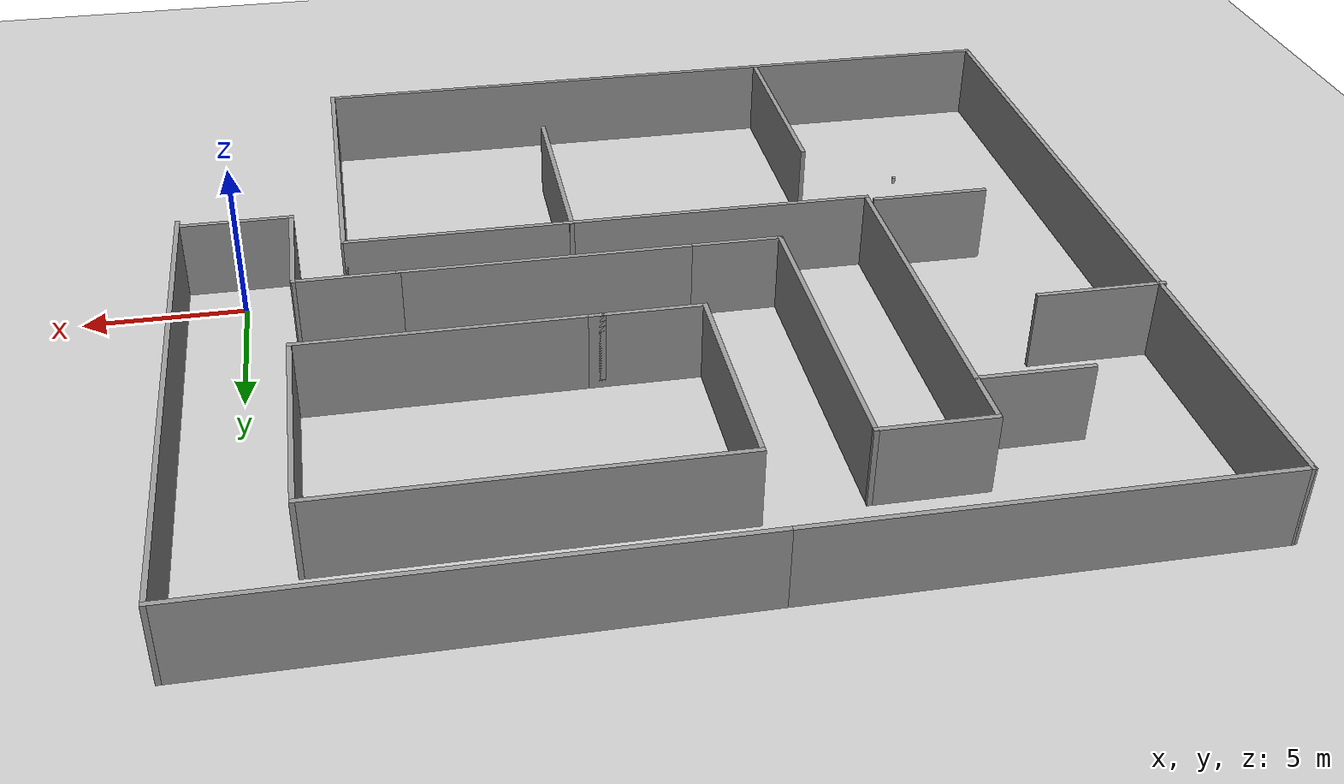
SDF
<sdf version="1.7">
 <world name="default">
  <light name="sun" type="directional">
   <pose>0 0 10 0 -0 0</pose>
   <diffuse>0.8 0.8 0.8 1</diffuse>
   <specular>0.2 0.2 0.2 1</specular>
   <attenuation>
    <range>1000</range>
    <constant>0.9</constant>
    <linear>0.01</linear>
    <quadratic>0.001</quadratic>
   </attenuation>
   <direction>-0.5 0.1 -0.9</direction>
   <spot><inner_angle>0</inner_angle><outer_angle>0</outer_angle><falloff>0</falloff></spot>
  </light>
  <model name="ground_plane">
   <static>1</static>
   <link name="link">
    <collision name="collision">
     <geometry><plane><normal>0 0 1</normal><size>100 100</size></plane></geometry>
     <surface>
      <contact><collide_bitmask>65535</collide_bitmask></contact>
      <friction><ode><mu>100</mu><mu2>50</mu2></ode></friction>
     </surface>
    </collision>
    <visual name="visual">
     <cast_shadows>0</cast_shadows>
     <geometry><plane><normal>0 0 1</normal><size>100 100</size></plane></geometry>
     <material>
      <script><uri>file://media/materials/scripts/gazebo.material</uri><name>Gazebo/Grey</name></script>
     </material>
    </visual>
   </link>
  </model>
  <gravity>0 0 -9.8</gravity>
  <magnetic_field>6e-06 2.3e-05 -4.2e-05</magnetic_field>
  <atmosphere type="adiabatic"/>
  <physics type="ode">
   <max_step_size>0.001</max_step_size>
   <real_time_factor>1</real_time_factor>
   <real_time_update_rate>1000</real_time_update_rate>
  </physics>
  <scene><ambient>0.4 0.4 0.4 1</ambient><background>0.7 0.7 0.7 1</background><shadows>1</shadows></scene>
  <audio><device>default</device></audio>
  <spherical_coordinates>
   <surface_model>EARTH_WGS84</surface_model>
   <latitude_deg>0</latitude_deg>
   <longitude_deg>0</longitude_deg>
   <elevation>0</elevation>
   <heading_deg>0</heading_deg>
  </spherical_coordinates>
  <model name="vudi">
   <pose>-9.96794 3.08644 0 0 -0 0</pose>
   <link name="Wall_0">
    <collision name="Wall_0_Collision">
     <geometry><box><size>17.5 0.15 2.5</size></box></geometry>
     <pose>0 0 1.25 0 -0 0</pose>
    </collision>
    <visual name="Wall_0_Visual">
     <pose>0 0 1.25 0 -0 0</pose>
     <geometry><box><size>17.5 0.15 2.5</size></box></geometry>
     <material>
      <script><uri>file://media/materials/scripts/gazebo.material</uri><name>Gazebo/Grey</name></script>
      <ambient>1 1 1 1</ambient>
     </material>
     <meta><layer>0</layer></meta>
    </visual>
    <pose>11.8385 4 0 0 -0 1.5708</pose>
   </link>
   <link name="Wall_1">
    <collision name="Wall_1_Collision">
     <geometry><box><size>15.25 0.15 2.5</size></box></geometry>
     <pose>0 0 1.25 0 -0 0</pose>
    </collision>
    <visual name="Wall_1_Visual">
     <pose>0 0 1.25 0 -0 0</pose>
     <geometry><box><size>15.25 0.15 2.5</size></box></geometry>
     <material>
      <script><uri>file://media/materials/scripts/gazebo.material</uri><name>Gazebo/Grey</name></script>
      <ambient>1 1 1 1</ambient>
     </material>
     <meta><layer>0</layer></meta>
    </visual>
    <pose>4.28854 12.675 0 0 -0 3.14159</pose>
   </link>
   <link name="Wall_10">
    <collision name="Wall_10_Collision">
     <geometry><box><size>7 0.15 2.5</size></box></geometry>
     <pose>0 0 1.25 0 -0 0</pose>
    </collision>
    <visual name="Wall_10_Visual">
     <pose>0 0 1.25 0 -0 0</pose>
     <geometry><box><size>7 0.15 2.5</size></box></geometry>
     <material>
      <script><uri>file://media/materials/scripts/gazebo.material</uri><name>Gazebo/Grey</name></script>
      <ambient>1 1 1 1</ambient>
     </material>
     <meta><layer>0</layer></meta>
    </visual>
    <pose>-3.37343 6.15995 0 0 -0 -1.5708</pose>
   </link>
   <link name="Wall_11">
    <collision name="Wall_11_Collision">
     <geometry><box><size>3.5 0.15 2.5</size></box></geometry>
     <pose>0 0 1.25 0 -0 0</pose>
    </collision>
    <visual name="Wall_11_Visual">
     <pose>0 0 1.25 0 -0 0</pose>
     <geometry><box><size>3.5 0.15 2.5</size></box></geometry>
     <material>
      <script><uri>file://media/materials/scripts/gazebo.material</uri><name>Gazebo/Grey</name></script>
      <ambient>1 1 1 1</ambient>
     </material>
     <meta><layer>0</layer></meta>
    </visual>
    <pose>-1.69843 2.73495 0 0 -0 0</pose>
   </link>
   <link name="Wall_13">
    <collision name="Wall_13_Collision">
     <geometry><box><size>3.25 0.15 2.5</size></box></geometry>
     <pose>0 0 1.25 0 -0 0</pose>
    </collision>
    <visual name="Wall_13_Visual">
     <pose>0 0 1.25 0 -0 0</pose>
     <geometry><box><size>3.25 0.15 2.5</size></box></geometry>
     <material>
      <script><uri>file://media/materials/scripts/gazebo.material</uri><name>Gazebo/Grey</name></script>
      <ambient>1 1 1 1</ambient>
     </material>
     <meta><layer>0</layer></meta>
    </visual>
    <pose>6.78854 -0.575 0 0 -0 0</pose>
   </link>
   <link name="Wall_14">
    <collision name="Wall_14_Collision">
     <geometry><box><size>4 0.15 2.5</size></box></geometry>
     <pose>0 0 1.25 0 -0 0</pose>
    </collision>
    <visual name="Wall_14_Visual">
     <pose>0 0 1.25 0 -0 0</pose>
     <geometry><box><size>4 0.15 2.5</size></box></geometry>
     <material>
      <script><uri>file://media/materials/scripts/gazebo.material</uri><name>Gazebo/Grey</name></script>
      <ambient>1 1 1 1</ambient>
     </material>
     <meta><layer>0</layer></meta>
    </visual>
    <pose>8.33854 -2.5 0 0 -0 -1.5708</pose>
   </link>
   <link name="Wall_17">
    <collision name="Wall_17_Collision">
     <geometry><box><size>3.5 0.15 2.5</size></box></geometry>
     <pose>0 0 1.25 0 -0 0</pose>
    </collision>
    <visual name="Wall_17_Visual">
     <pose>0 0 1.25 0 -0 0</pose>
     <geometry><box><size>3.5 0.15 2.5</size></box></geometry>
     <material>
      <script><uri>file://media/materials/scripts/gazebo.material</uri><name>Gazebo/Grey</name></script>
      <ambient>1 1 1 1</ambient>
     </material>
     <meta><layer>0</layer></meta>
    </visual>
    <pose>10.0135 -4.425 0 0 -0 0</pose>
   </link>
   <link name="Wall_19">
    <collision name="Wall_19_Collision">
     <geometry><box><size>3 0.15 2.5</size></box></geometry>
     <pose>0 0 1.25 0 -0 0</pose>
    </collision>
    <visual name="Wall_19_Visual">
     <pose>0 0 1.25 0 -0 0</pose>
     <geometry><box><size>3 0.15 2.5</size></box></geometry>
     <material>
      <script><uri>file://media/materials/scripts/gazebo.material</uri><name>Gazebo/Grey</name></script>
      <ambient>1 1 1 1</ambient>
     </material>
     <meta><layer>0</layer></meta>
    </visual>
    <pose>-5.03646 -0.575 0 0 -0 3.14159</pose>
   </link>
   <link name="Wall_20">
    <collision name="Wall_20_Collision">
     <geometry><box><size>10 0.15 2.5</size></box></geometry>
     <pose>0 0 1.25 0 -0 0</pose>
    </collision>
    <visual name="Wall_20_Visual">
     <pose>0 0 1.25 0 -0 0</pose>
     <geometry><box><size>10 0.15 2.5</size></box></geometry>
     <material>
      <script><uri>file://media/materials/scripts/gazebo.material</uri><name>Gazebo/Grey</name></script>
      <ambient>1 1 1 1</ambient>
     </material>
     <meta><layer>0</layer></meta>
    </visual>
    <pose>-6.46146 4.35 0 0 -0 1.5708</pose>
   </link>
   <link name="Wall_21">
    <collision name="Wall_21_Collision">
     <geometry><box><size>3.5 0.15 2.5</size></box></geometry>
     <pose>0 0 1.25 0 -0 0</pose>
    </collision>
    <visual name="Wall_21_Visual">
     <pose>0 0 1.25 0 -0 0</pose>
     <geometry><box><size>3.5 0.15 2.5</size></box></geometry>
     <material>
      <script><uri>file://media/materials/scripts/gazebo.material</uri><name>Gazebo/Grey</name></script>
      <ambient>1 1 1 1</ambient>
     </material>
     <meta><layer>0</layer></meta>
    </visual>
    <pose>-8.13646 9.275 0 0 -0 3.14159</pose>
   </link>
   <link name="Wall_22">
    <collision name="Wall_22_Collision">
     <geometry><box><size>12 0.15 2.5</size></box></geometry>
     <pose>0 0 1.25 0 -0 0</pose>
    </collision>
    <visual name="Wall_22_Visual">
     <pose>0 0 1.25 0 -0 0</pose>
     <geometry><box><size>12 0.15 2.5</size></box></geometry>
     <material>
      <script><uri>file://media/materials/scripts/gazebo.material</uri><name>Gazebo/Grey</name></script>
      <ambient>1 1 1 1</ambient>
     </material>
     <meta><layer>0</layer></meta>
    </visual>
    <pose>-9.81146 3.35 0 0 -0 -1.5708</pose>
   </link>
   <link name="Wall_23">
    <collision name="Wall_23_Collision">
     <geometry><box><size>16.75 0.15 2.5</size></box></geometry>
     <pose>0 0 1.25 0 -0 0</pose>
    </collision>
    <visual name="Wall_23_Visual">
     <pose>0 0 1.25 0 -0 0</pose>
     <geometry><box><size>16.75 0.15 2.5</size></box></geometry>
     <material>
      <script><uri>file://media/materials/scripts/gazebo.material</uri><name>Gazebo/Grey</name></script>
      <ambient>1 1 1 1</ambient>
     </material>
     <meta><layer>0</layer></meta>
    </visual>
    <pose>-1.51146 -2.575 0 0 -0 0</pose>
   </link>
   <link name="Wall_24">
    <collision name="Wall_24_Collision">
     <geometry><box><size>10.25 0.15 2.5</size></box></geometry>
     <pose>0 0 1.25 0 -0 0</pose>
    </collision>
    <visual name="Wall_24_Visual">
     <pose>0 0 1.25 0 -0 0</pose>
     <geometry><box><size>10.25 0.15 2.5</size></box></geometry>
     <material>
      <script><uri>file://media/materials/scripts/gazebo.material</uri><name>Gazebo/Grey</name></script>
      <ambient>1 1 1 1</ambient>
     </material>
     <meta><layer>0</layer></meta>
    </visual>
    <pose>6.78854 -7.625 0 0 -0 -1.5708</pose>
   </link>
   <link name="Wall_25">
    <collision name="Wall_25_Collision">
     <geometry><box><size>23.75 0.15 2.5</size></box></geometry>
     <pose>0 0 1.25 0 -0 0</pose>
    </collision>
    <visual name="Wall_25_Visual">
     <pose>0 0 1.25 0 -0 0</pose>
     <geometry><box><size>23.75 0.15 2.5</size></box></geometry>
     <material>
      <script><uri>file://media/materials/scripts/gazebo.material</uri><name>Gazebo/Grey</name></script>
      <ambient>1 1 1 1</ambient>
     </material>
     <meta><layer>0</layer></meta>
    </visual>
    <pose>-5.01146 -12.675 0 0 -0 3.14159</pose>
   </link>
   <link name="Wall_26">
    <collision name="Wall_26_Collision">
     <geometry><box><size>25.5 0.15 2.5</size></box></geometry>
     <pose>0 0 1.25 0 -0 0</pose>
    </collision>
    <visual name="Wall_26_Visual">
     <pose>0 0 1.25 0 -0 0</pose>
     <geometry><box><size>25.5 0.15 2.5</size></box></geometry>
     <material>
      <script><uri>file://media/materials/scripts/gazebo.material</uri><name>Gazebo/Grey</name></script>
      <ambient>1 1 1 1</ambient>
     </material>
     <meta><layer>0</layer></meta>
    </visual>
    <pose>-16.8115 -0 0 0 -0 1.5708</pose>
   </link>
   <link name="Wall_27">
    <collision name="Wall_27_Collision">
     <geometry><box><size>13.7 0.15 2.5</size></box></geometry>
     <pose>0 0 1.25 0 -0 0</pose>
    </collision>
    <visual name="Wall_27_Visual">
     <pose>0 0 1.25 0 -0 0</pose>
     <geometry><box><size>13.7 0.15 2.5</size></box></geometry>
     <material>
      <script><uri>file://media/materials/scripts/gazebo.material</uri><name>Gazebo/Grey</name></script>
      <ambient>1 1 1 1</ambient>
     </material>
     <meta><layer>0</layer></meta>
    </visual>
    <pose>-10.0365 12.675 0 0 -0 0</pose>
   </link>
   <link name="Wall_29">
    <collision name="Wall_29_Collision">
     <geometry><box><size>3.5 0.15 2.5</size></box></geometry>
     <pose>0 0 1.25 0 -0 0</pose>
    </collision>
    <visual name="Wall_29_Visual">
     <pose>0 0 1.25 0 -0 0</pose>
     <geometry><box><size>3.5 0.15 2.5</size></box></geometry>
     <material>
      <script><uri>file://media/materials/scripts/gazebo.material</uri><name>Gazebo/Grey</name></script>
      <ambient>1 1 1 1</ambient>
     </material>
     <meta><layer>0</layer></meta>
    </visual>
    <pose>-11.5262 7.53353 0 0 -0 3.14159</pose>
   </link>
   <link name="Wall_31">
    <collision name="Wall_31_Collision">
     <geometry><box><size>4 0.15 2.5</size></box></geometry>
     <pose>0 0 1.25 0 -0 0</pose>
    </collision>
    <visual name="Wall_31_Visual">
     <pose>0 0 1.25 0 -0 0</pose>
     <geometry><box><size>4 0.15 2.5</size></box></geometry>
     <material>
      <script><uri>file://media/materials/scripts/gazebo.material</uri><name>Gazebo/Grey</name></script>
      <ambient>1 1 1 1</ambient>
     </material>
     <meta><layer>0</layer></meta>
    </visual>
    <pose>-14.9885 3.89536 0 0 -0 0</pose>
   </link>
   <link name="Wall_36">
    <collision name="Wall_36_Collision">
     <geometry><box><size>3.75 0.15 2.5</size></box></geometry>
     <pose>0 0 1.25 0 -0 0</pose>
    </collision>
    <visual name="Wall_36_Visual">
     <pose>0 0 1.25 0 -0 0</pose>
     <geometry><box><size>3.75 0.15 2.5</size></box></geometry>
     <material>
      <script><uri>file://media/materials/scripts/gazebo.material</uri><name>Gazebo/Grey</name></script>
      <ambient>1 1 1 1</ambient>
     </material>
     <meta><layer>0</layer></meta>
    </visual>
    <pose>-11.8652 -2.36443 0 0 -0 3.14159</pose>
   </link>
   <link name="Wall_40">
    <collision name="Wall_40_Collision">
     <geometry><box><size>6.75 0.15 2.5</size></box></geometry>
     <pose>0 0 1.25 0 -0 0</pose>
    </collision>
    <visual name="Wall_40_Visual">
     <pose>0 0 1.25 0 -0 0</pose>
     <geometry><box><size>6.75 0.15 2.5</size></box></geometry>
     <material>
      <script><uri>file://media/materials/scripts/gazebo.material</uri><name>Gazebo/Grey</name></script>
      <ambient>1 1 1 1</ambient>
     </material>
     <meta><layer>0</layer></meta>
    </visual>
    <pose>-8.62065 -9.2299 0 0 -0 1.5708</pose>
   </link>
   <link name="Wall_42">
    <collision name="Wall_42_Collision">
     <geometry><box><size>6.75 0.15 2.5</size></box></geometry>
     <pose>0 0 1.25 0 -0 0</pose>
    </collision>
    <visual name="Wall_42_Visual">
     <pose>0 0 1.25 0 -0 0</pose>
     <geometry><box><size>6.75 0.15 2.5</size></box></geometry>
     <material>
      <script><uri>file://media/materials/scripts/gazebo.material</uri><name>Gazebo/Grey</name></script>
      <ambient>1 1 1 1</ambient>
     </material>
     <meta><layer>0</layer></meta>
    </visual>
    <pose>-0.274261 -5.82493 0 0 -0 -1.5708</pose>
   </link>
   <link name="Wall_5">
    <collision name="Wall_5_Collision">
     <geometry><box><size>9 0.15 2.5</size></box></geometry>
     <pose>0 0 1.25 0 -0 0</pose>
    </collision>
    <visual name="Wall_5_Visual">
     <pose>0 0 1.25 0 -0 0</pose>
     <geometry><box><size>9 0.15 2.5</size></box></geometry>
     <material>
      <script><uri>file://media/materials/scripts/gazebo.material</uri><name>Gazebo/Grey</name></script>
      <ambient>1 1 1 1</ambient>
     </material>
     <meta><layer>0</layer></meta>
    </visual>
    <pose>0.81354 -0.575 0 0 -0 3.14159</pose>
   </link>
   <link name="Wall_7">
    <collision name="Wall_7_Collision">
     <geometry><box><size>9 0.15 2.5</size></box></geometry>
     <pose>0 0 1.25 0 -0 0</pose>
    </collision>
    <visual name="Wall_7_Visual">
     <pose>0 0 1.25 0 -0 0</pose>
     <geometry><box><size>9 0.15 2.5</size></box></geometry>
     <material>
      <script><uri>file://media/materials/scripts/gazebo.material</uri><name>Gazebo/Grey</name></script>
      <ambient>1 1 1 1</ambient>
     </material>
     <meta><layer>0</layer></meta>
    </visual>
    <pose>4.05157 2.73495 0 0 -0 0</pose>
   </link>
   <link name="Wall_8">
    <collision name="Wall_8_Collision">
     <geometry><box><size>7 0.15 2.5</size></box></geometry>
     <pose>0 0 1.25 0 -0 0</pose>
    </collision>
    <visual name="Wall_8_Visual">
     <pose>0 0 1.25 0 -0 0</pose>
     <geometry><box><size>7 0.15 2.5</size></box></geometry>
     <material>
      <script><uri>file://media/materials/scripts/gazebo.material</uri><name>Gazebo/Grey</name></script>
      <ambient>1 1 1 1</ambient>
     </material>
     <meta><layer>0</layer></meta>
    </visual>
    <pose>8.47657 6.15995 0 0 -0 1.5708</pose>
   </link>
   <link name="Wall_9">
    <collision name="Wall_9_Collision">
     <geometry><box><size>12 0.15 2.5</size></box></geometry>
     <pose>0 0 1.25 0 -0 0</pose>
    </collision>
    <visual name="Wall_9_Visual">
     <pose>0 0 1.25 0 -0 0</pose>
     <geometry><box><size>12 0.15 2.5</size></box></geometry>
     <material>
      <script><uri>file://media/materials/scripts/gazebo.material</uri><name>Gazebo/Grey</name></script>
      <ambient>1 1 1 1</ambient>
     </material>
     <meta><layer>0</layer></meta>
    </visual>
    <pose>2.55157 9.58495 0 0 -0 3.14159</pose>
   </link>
   <static>1</static>
  </model>
  <model name="beer">
   <link name="link">
    <pose>0 0 0.115 0 -0 0</pose>
    <inertial>
     <mass>0.39</mass>
     <inertia><ixx>0.00058</ixx><ixy>0</ixy><ixz>0</ixz><iyy>0.00058</iyy><iyz>0</iyz><izz>0.00019</izz></inertia>
    </inertial>
    <collision name="collision">
     <geometry><cylinder><radius>0.055</radius><length>0.23</length></cylinder></geometry>
    </collision>
    <visual name="visual">
     <geometry><cylinder><radius>0.055</radius><length>0.23</length></cylinder></geometry>
     <material>
      <script>
       <uri>model://beer/materials/scripts</uri>
       <uri>model://beer/materials/textures</uri>
       <name>Beer/Diffuse</name>
      </script>
     </material>
    </visual>
   </link>
   <pose>-22.4969 -4.47978 -2e-06 1e-06 -0 -1e-06</pose>
  </model>
 </world>
</sdf>
